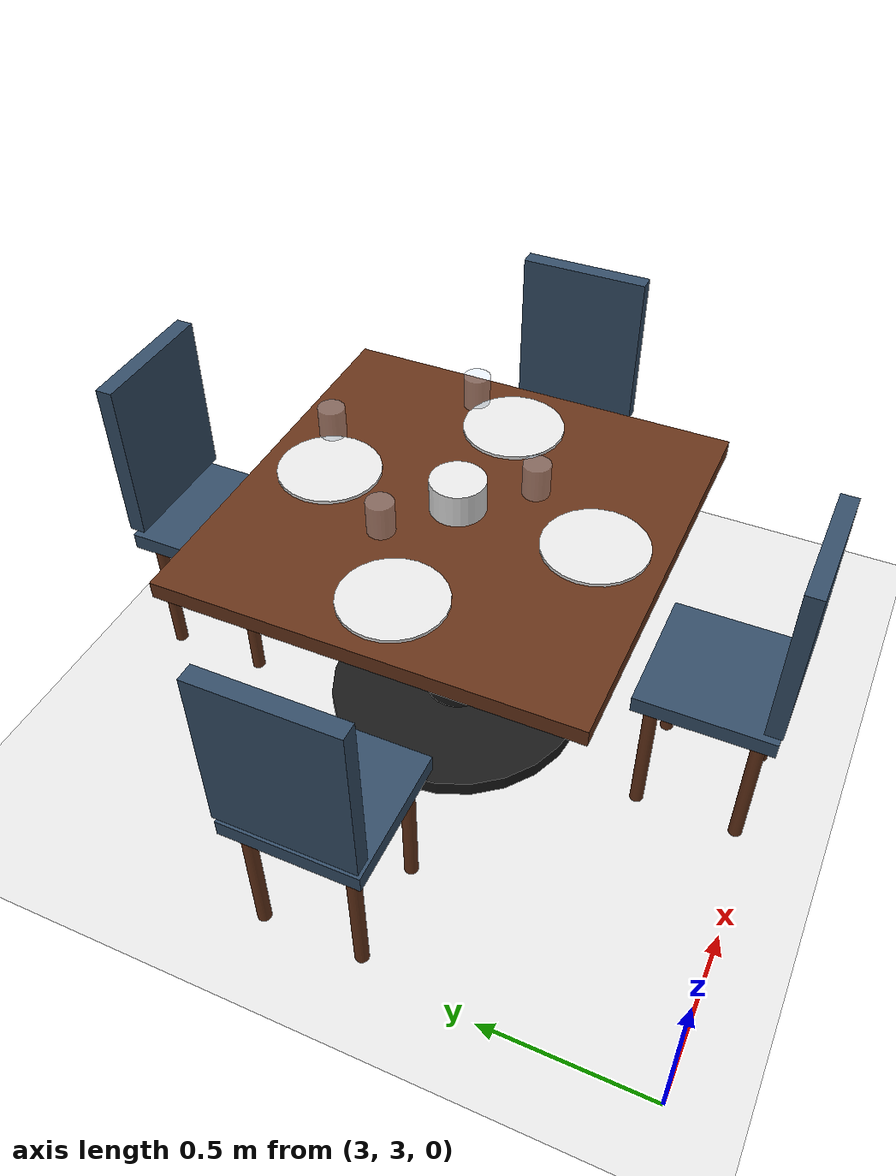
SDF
<sdf version="1.9">
 <world name="argo_restaurant">
  <model name="ground_plane">
   <static>true</static>
   <link name="link">
    <collision name="collision">
     <geometry><plane><normal>0 0 1</normal><size>100 100</size></plane></geometry>
    </collision>
    <visual name="visual">
     <geometry><plane><normal>0 0 1</normal><size>100 100</size></plane></geometry>
     <material>
      <ambient>0.9 0.9 0.9 1</ambient>
      <diffuse>0.9 0.9 0.9 1</diffuse>
      <specular>0.1 0.1 0.1 1</specular>
      <pbr><metal><roughness>0.1</roughness><metalness>0.0</metalness></metal></pbr>
     </material>
    </visual>
   </link>
  </model>
  <model name="table_8">
   <static>true</static>
   <link name="top_link">
    <pose>4.0 4.0 0.75 0 0 0</pose>
    <collision name="top_collision"><geometry><box><size>1.2 1.2 0.05</size></box></geometry></collision>
    <visual name="top_visual">
     <geometry><box><size>1.2 1.2 0.05</size></box></geometry>
     <material>
      <ambient>0.4 0.2 0.1 1</ambient>
      <diffuse>0.4 0.2 0.1 1</diffuse>
      <specular>0.1 0.1 0.1 1</specular>
      <pbr><metal><roughness>0.7</roughness><metalness>0.1</metalness></metal></pbr>
     </material>
    </visual>
   </link>
   <link name="leg_link">
    <pose>4.0 4.0 0.375 0 0 0</pose>
    <collision name="leg_collision">
     <geometry><cylinder><radius>0.1</radius><length>0.75</length></cylinder></geometry>
    </collision>
    <visual name="leg_visual">
     <geometry><cylinder><radius>0.1</radius><length>0.75</length></cylinder></geometry>
     <material>
      <ambient>0.1 0.1 0.1 1</ambient>
      <diffuse>0.1 0.1 0.1 1</diffuse>
      <specular>0.1 0.1 0.1 1</specular>
      <pbr><metal><roughness>0.5</roughness><metalness>0.0</metalness></metal></pbr>
     </material>
    </visual>
   </link>
   <link name="base_link">
    <pose>4.0 4.0 0.025 0 0 0</pose>
    <collision name="base_collision">
     <geometry><cylinder><radius>0.4</radius><length>0.05</length></cylinder></geometry>
    </collision>
    <visual name="base_visual">
     <geometry><cylinder><radius>0.4</radius><length>0.05</length></cylinder></geometry>
     <material>
      <ambient>0.1 0.1 0.1 1</ambient>
      <diffuse>0.1 0.1 0.1 1</diffuse>
      <specular>0.1 0.1 0.1 1</specular>
      <pbr><metal><roughness>0.5</roughness><metalness>0.0</metalness></metal></pbr>
     </material>
    </visual>
   </link>
   <link name="chair_0_seat_link">
    <pose>4.0 4.8 0.45 0 0 0</pose>
    <collision name="chair_0_seat_collision"><geometry><box><size>0.4 0.4 0.05</size></box></geometry></collision>
    <visual name="chair_0_seat_visual">
     <geometry><box><size>0.4 0.4 0.05</size></box></geometry>
     <material>
      <ambient>0.2 0.3 0.4 1</ambient>
      <diffuse>0.2 0.3 0.4 1</diffuse>
      <specular>0.1 0.1 0.1 1</specular>
      <pbr><metal><roughness>0.9</roughness><metalness>0.0</metalness></metal></pbr>
     </material>
    </visual>
   </link>
   <link name="chair_0_leg_-0.15_-0.15_link">
    <pose>3.85 4.6499999999999995 0.225 0 0 0</pose>
    <collision name="chair_0_leg_-0.15_-0.15_collision">
     <geometry><cylinder><radius>0.02</radius><length>0.45</length></cylinder></geometry>
    </collision>
    <visual name="chair_0_leg_-0.15_-0.15_visual">
     <geometry><cylinder><radius>0.02</radius><length>0.45</length></cylinder></geometry>
     <material>
      <ambient>0.4 0.2 0.1 1</ambient>
      <diffuse>0.4 0.2 0.1 1</diffuse>
      <specular>0.1 0.1 0.1 1</specular>
      <pbr><metal><roughness>0.7</roughness><metalness>0.1</metalness></metal></pbr>
     </material>
    </visual>
   </link>
   <link name="chair_0_leg_0.15_-0.15_link">
    <pose>4.15 4.6499999999999995 0.225 0 0 0</pose>
    <collision name="chair_0_leg_0.15_-0.15_collision">
     <geometry><cylinder><radius>0.02</radius><length>0.45</length></cylinder></geometry>
    </collision>
    <visual name="chair_0_leg_0.15_-0.15_visual">
     <geometry><cylinder><radius>0.02</radius><length>0.45</length></cylinder></geometry>
     <material>
      <ambient>0.4 0.2 0.1 1</ambient>
      <diffuse>0.4 0.2 0.1 1</diffuse>
      <specular>0.1 0.1 0.1 1</specular>
      <pbr><metal><roughness>0.7</roughness><metalness>0.1</metalness></metal></pbr>
     </material>
    </visual>
   </link>
   <link name="chair_0_leg_-0.15_0.15_link">
    <pose>3.85 4.95 0.225 0 0 0</pose>
    <collision name="chair_0_leg_-0.15_0.15_collision">
     <geometry><cylinder><radius>0.02</radius><length>0.45</length></cylinder></geometry>
    </collision>
    <visual name="chair_0_leg_-0.15_0.15_visual">
     <geometry><cylinder><radius>0.02</radius><length>0.45</length></cylinder></geometry>
     <material>
      <ambient>0.4 0.2 0.1 1</ambient>
      <diffuse>0.4 0.2 0.1 1</diffuse>
      <specular>0.1 0.1 0.1 1</specular>
      <pbr><metal><roughness>0.7</roughness><metalness>0.1</metalness></metal></pbr>
     </material>
    </visual>
   </link>
   <link name="chair_0_leg_0.15_0.15_link">
    <pose>4.15 4.95 0.225 0 0 0</pose>
    <collision name="chair_0_leg_0.15_0.15_collision">
     <geometry><cylinder><radius>0.02</radius><length>0.45</length></cylinder></geometry>
    </collision>
    <visual name="chair_0_leg_0.15_0.15_visual">
     <geometry><cylinder><radius>0.02</radius><length>0.45</length></cylinder></geometry>
     <material>
      <ambient>0.4 0.2 0.1 1</ambient>
      <diffuse>0.4 0.2 0.1 1</diffuse>
      <specular>0.1 0.1 0.1 1</specular>
      <pbr><metal><roughness>0.7</roughness><metalness>0.1</metalness></metal></pbr>
     </material>
    </visual>
   </link>
   <link name="chair_0_back_link">
    <pose>4.0 4.9799999999999995 0.75 0 0 0</pose>
    <collision name="chair_0_back_collision"><geometry><box><size>0.4 0.05 0.5</size></box></geometry></collision>
    <visual name="chair_0_back_visual">
     <geometry><box><size>0.4 0.05 0.5</size></box></geometry>
     <material>
      <ambient>0.2 0.3 0.4 1</ambient>
      <diffuse>0.2 0.3 0.4 1</diffuse>
      <specular>0.1 0.1 0.1 1</specular>
      <pbr><metal><roughness>0.9</roughness><metalness>0.0</metalness></metal></pbr>
     </material>
    </visual>
   </link>
   <link name="chair_1_seat_link">
    <pose>4.0 3.2 0.45 0 0 3.1415</pose>
    <collision name="chair_1_seat_collision"><geometry><box><size>0.4 0.4 0.05</size></box></geometry></collision>
    <visual name="chair_1_seat_visual">
     <geometry><box><size>0.4 0.4 0.05</size></box></geometry>
     <material>
      <ambient>0.2 0.3 0.4 1</ambient>
      <diffuse>0.2 0.3 0.4 1</diffuse>
      <specular>0.1 0.1 0.1 1</specular>
      <pbr><metal><roughness>0.9</roughness><metalness>0.0</metalness></metal></pbr>
     </material>
    </visual>
   </link>
   <link name="chair_1_leg_-0.15_-0.15_link">
    <pose>3.85 3.0500000000000003 0.225 0 0 0</pose>
    <collision name="chair_1_leg_-0.15_-0.15_collision">
     <geometry><cylinder><radius>0.02</radius><length>0.45</length></cylinder></geometry>
    </collision>
    <visual name="chair_1_leg_-0.15_-0.15_visual">
     <geometry><cylinder><radius>0.02</radius><length>0.45</length></cylinder></geometry>
     <material>
      <ambient>0.4 0.2 0.1 1</ambient>
      <diffuse>0.4 0.2 0.1 1</diffuse>
      <specular>0.1 0.1 0.1 1</specular>
      <pbr><metal><roughness>0.7</roughness><metalness>0.1</metalness></metal></pbr>
     </material>
    </visual>
   </link>
   <link name="chair_1_leg_0.15_-0.15_link">
    <pose>4.15 3.0500000000000003 0.225 0 0 0</pose>
    <collision name="chair_1_leg_0.15_-0.15_collision">
     <geometry><cylinder><radius>0.02</radius><length>0.45</length></cylinder></geometry>
    </collision>
    <visual name="chair_1_leg_0.15_-0.15_visual">
     <geometry><cylinder><radius>0.02</radius><length>0.45</length></cylinder></geometry>
     <material>
      <ambient>0.4 0.2 0.1 1</ambient>
      <diffuse>0.4 0.2 0.1 1</diffuse>
      <specular>0.1 0.1 0.1 1</specular>
      <pbr><metal><roughness>0.7</roughness><metalness>0.1</metalness></metal></pbr>
     </material>
    </visual>
   </link>
   <link name="chair_1_leg_-0.15_0.15_link">
    <pose>3.85 3.35 0.225 0 0 0</pose>
    <collision name="chair_1_leg_-0.15_0.15_collision">
     <geometry><cylinder><radius>0.02</radius><length>0.45</length></cylinder></geometry>
    </collision>
    <visual name="chair_1_leg_-0.15_0.15_visual">
     <geometry><cylinder><radius>0.02</radius><length>0.45</length></cylinder></geometry>
     <material>
      <ambient>0.4 0.2 0.1 1</ambient>
      <diffuse>0.4 0.2 0.1 1</diffuse>
      <specular>0.1 0.1 0.1 1</specular>
      <pbr><metal><roughness>0.7</roughness><metalness>0.1</metalness></metal></pbr>
     </material>
    </visual>
   </link>
   <link name="chair_1_leg_0.15_0.15_link">
    <pose>4.15 3.35 0.225 0 0 0</pose>
    <collision name="chair_1_leg_0.15_0.15_collision">
     <geometry><cylinder><radius>0.02</radius><length>0.45</length></cylinder></geometry>
    </collision>
    <visual name="chair_1_leg_0.15_0.15_visual">
     <geometry><cylinder><radius>0.02</radius><length>0.45</length></cylinder></geometry>
     <material>
      <ambient>0.4 0.2 0.1 1</ambient>
      <diffuse>0.4 0.2 0.1 1</diffuse>
      <specular>0.1 0.1 0.1 1</specular>
      <pbr><metal><roughness>0.7</roughness><metalness>0.1</metalness></metal></pbr>
     </material>
    </visual>
   </link>
   <link name="chair_1_back_link">
    <pose>3.9999833223538612 3.020000000772622 0.75 0 0 3.1415</pose>
    <collision name="chair_1_back_collision"><geometry><box><size>0.4 0.05 0.5</size></box></geometry></collision>
    <visual name="chair_1_back_visual">
     <geometry><box><size>0.4 0.05 0.5</size></box></geometry>
     <material>
      <ambient>0.2 0.3 0.4 1</ambient>
      <diffuse>0.2 0.3 0.4 1</diffuse>
      <specular>0.1 0.1 0.1 1</specular>
      <pbr><metal><roughness>0.9</roughness><metalness>0.0</metalness></metal></pbr>
     </material>
    </visual>
   </link>
   <link name="chair_2_seat_link">
    <pose>4.8 4.0 0.45 0 0 -1.5707</pose>
    <collision name="chair_2_seat_collision"><geometry><box><size>0.4 0.4 0.05</size></box></geometry></collision>
    <visual name="chair_2_seat_visual">
     <geometry><box><size>0.4 0.4 0.05</size></box></geometry>
     <material>
      <ambient>0.2 0.3 0.4 1</ambient>
      <diffuse>0.2 0.3 0.4 1</diffuse>
      <specular>0.1 0.1 0.1 1</specular>
      <pbr><metal><roughness>0.9</roughness><metalness>0.0</metalness></metal></pbr>
     </material>
    </visual>
   </link>
   <link name="chair_2_leg_-0.15_-0.15_link">
    <pose>4.6499999999999995 3.85 0.225 0 0 0</pose>
    <collision name="chair_2_leg_-0.15_-0.15_collision">
     <geometry><cylinder><radius>0.02</radius><length>0.45</length></cylinder></geometry>
    </collision>
    <visual name="chair_2_leg_-0.15_-0.15_visual">
     <geometry><cylinder><radius>0.02</radius><length>0.45</length></cylinder></geometry>
     <material>
      <ambient>0.4 0.2 0.1 1</ambient>
      <diffuse>0.4 0.2 0.1 1</diffuse>
      <specular>0.1 0.1 0.1 1</specular>
      <pbr><metal><roughness>0.7</roughness><metalness>0.1</metalness></metal></pbr>
     </material>
    </visual>
   </link>
   <link name="chair_2_leg_0.15_-0.15_link">
    <pose>4.95 3.85 0.225 0 0 0</pose>
    <collision name="chair_2_leg_0.15_-0.15_collision">
     <geometry><cylinder><radius>0.02</radius><length>0.45</length></cylinder></geometry>
    </collision>
    <visual name="chair_2_leg_0.15_-0.15_visual">
     <geometry><cylinder><radius>0.02</radius><length>0.45</length></cylinder></geometry>
     <material>
      <ambient>0.4 0.2 0.1 1</ambient>
      <diffuse>0.4 0.2 0.1 1</diffuse>
      <specular>0.1 0.1 0.1 1</specular>
      <pbr><metal><roughness>0.7</roughness><metalness>0.1</metalness></metal></pbr>
     </material>
    </visual>
   </link>
   <link name="chair_2_leg_-0.15_0.15_link">
    <pose>4.6499999999999995 4.15 0.225 0 0 0</pose>
    <collision name="chair_2_leg_-0.15_0.15_collision">
     <geometry><cylinder><radius>0.02</radius><length>0.45</length></cylinder></geometry>
    </collision>
    <visual name="chair_2_leg_-0.15_0.15_visual">
     <geometry><cylinder><radius>0.02</radius><length>0.45</length></cylinder></geometry>
     <material>
      <ambient>0.4 0.2 0.1 1</ambient>
      <diffuse>0.4 0.2 0.1 1</diffuse>
      <specular>0.1 0.1 0.1 1</specular>
      <pbr><metal><roughness>0.7</roughness><metalness>0.1</metalness></metal></pbr>
     </material>
    </visual>
   </link>
   <link name="chair_2_leg_0.15_0.15_link">
    <pose>4.95 4.15 0.225 0 0 0</pose>
    <collision name="chair_2_leg_0.15_0.15_collision">
     <geometry><cylinder><radius>0.02</radius><length>0.45</length></cylinder></geometry>
    </collision>
    <visual name="chair_2_leg_0.15_0.15_visual">
     <geometry><cylinder><radius>0.02</radius><length>0.45</length></cylinder></geometry>
     <material>
      <ambient>0.4 0.2 0.1 1</ambient>
      <diffuse>0.4 0.2 0.1 1</diffuse>
      <specular>0.1 0.1 0.1 1</specular>
      <pbr><metal><roughness>0.7</roughness><metalness>0.1</metalness></metal></pbr>
     </material>
    </visual>
   </link>
   <link name="chair_2_back_link">
    <pose>4.979999999164903 4.000017338823055 0.75 0 0 -1.5707</pose>
    <collision name="chair_2_back_collision"><geometry><box><size>0.4 0.05 0.5</size></box></geometry></collision>
    <visual name="chair_2_back_visual">
     <geometry><box><size>0.4 0.05 0.5</size></box></geometry>
     <material>
      <ambient>0.2 0.3 0.4 1</ambient>
      <diffuse>0.2 0.3 0.4 1</diffuse>
      <specular>0.1 0.1 0.1 1</specular>
      <pbr><metal><roughness>0.9</roughness><metalness>0.0</metalness></metal></pbr>
     </material>
    </visual>
   </link>
   <link name="chair_3_seat_link">
    <pose>3.2 4.0 0.45 0 0 1.5707</pose>
    <collision name="chair_3_seat_collision"><geometry><box><size>0.4 0.4 0.05</size></box></geometry></collision>
    <visual name="chair_3_seat_visual">
     <geometry><box><size>0.4 0.4 0.05</size></box></geometry>
     <material>
      <ambient>0.2 0.3 0.4 1</ambient>
      <diffuse>0.2 0.3 0.4 1</diffuse>
      <specular>0.1 0.1 0.1 1</specular>
      <pbr><metal><roughness>0.9</roughness><metalness>0.0</metalness></metal></pbr>
     </material>
    </visual>
   </link>
   <link name="chair_3_leg_-0.15_-0.15_link">
    <pose>3.0500000000000003 3.85 0.225 0 0 0</pose>
    <collision name="chair_3_leg_-0.15_-0.15_collision">
     <geometry><cylinder><radius>0.02</radius><length>0.45</length></cylinder></geometry>
    </collision>
    <visual name="chair_3_leg_-0.15_-0.15_visual">
     <geometry><cylinder><radius>0.02</radius><length>0.45</length></cylinder></geometry>
     <material>
      <ambient>0.4 0.2 0.1 1</ambient>
      <diffuse>0.4 0.2 0.1 1</diffuse>
      <specular>0.1 0.1 0.1 1</specular>
      <pbr><metal><roughness>0.7</roughness><metalness>0.1</metalness></metal></pbr>
     </material>
    </visual>
   </link>
   <link name="chair_3_leg_0.15_-0.15_link">
    <pose>3.35 3.85 0.225 0 0 0</pose>
    <collision name="chair_3_leg_0.15_-0.15_collision">
     <geometry><cylinder><radius>0.02</radius><length>0.45</length></cylinder></geometry>
    </collision>
    <visual name="chair_3_leg_0.15_-0.15_visual">
     <geometry><cylinder><radius>0.02</radius><length>0.45</length></cylinder></geometry>
     <material>
      <ambient>0.4 0.2 0.1 1</ambient>
      <diffuse>0.4 0.2 0.1 1</diffuse>
      <specular>0.1 0.1 0.1 1</specular>
      <pbr><metal><roughness>0.7</roughness><metalness>0.1</metalness></metal></pbr>
     </material>
    </visual>
   </link>
   <link name="chair_3_leg_-0.15_0.15_link">
    <pose>3.0500000000000003 4.15 0.225 0 0 0</pose>
    <collision name="chair_3_leg_-0.15_0.15_collision">
     <geometry><cylinder><radius>0.02</radius><length>0.45</length></cylinder></geometry>
    </collision>
    <visual name="chair_3_leg_-0.15_0.15_visual">
     <geometry><cylinder><radius>0.02</radius><length>0.45</length></cylinder></geometry>
     <material>
      <ambient>0.4 0.2 0.1 1</ambient>
      <diffuse>0.4 0.2 0.1 1</diffuse>
      <specular>0.1 0.1 0.1 1</specular>
      <pbr><metal><roughness>0.7</roughness><metalness>0.1</metalness></metal></pbr>
     </material>
    </visual>
   </link>
   <link name="chair_3_leg_0.15_0.15_link">
    <pose>3.35 4.15 0.225 0 0 0</pose>
    <collision name="chair_3_leg_0.15_0.15_collision">
     <geometry><cylinder><radius>0.02</radius><length>0.45</length></cylinder></geometry>
    </collision>
    <visual name="chair_3_leg_0.15_0.15_visual">
     <geometry><cylinder><radius>0.02</radius><length>0.45</length></cylinder></geometry>
     <material>
      <ambient>0.4 0.2 0.1 1</ambient>
      <diffuse>0.4 0.2 0.1 1</diffuse>
      <specular>0.1 0.1 0.1 1</specular>
      <pbr><metal><roughness>0.7</roughness><metalness>0.1</metalness></metal></pbr>
     </material>
    </visual>
   </link>
   <link name="chair_3_back_link">
    <pose>3.020000000835097 4.000017338823055 0.75 0 0 1.5707</pose>
    <collision name="chair_3_back_collision"><geometry><box><size>0.4 0.05 0.5</size></box></geometry></collision>
    <visual name="chair_3_back_visual">
     <geometry><box><size>0.4 0.05 0.5</size></box></geometry>
     <material>
      <ambient>0.2 0.3 0.4 1</ambient>
      <diffuse>0.2 0.3 0.4 1</diffuse>
      <specular>0.1 0.1 0.1 1</specular>
      <pbr><metal><roughness>0.9</roughness><metalness>0.0</metalness></metal></pbr>
     </material>
    </visual>
   </link>
   <link name="centerpiece_pot_link">
    <pose>4.0 4.0 0.825 0 0 0</pose>
    <collision name="centerpiece_pot_collision">
     <geometry><cylinder><radius>0.08</radius><length>0.1</length></cylinder></geometry>
    </collision>
    <visual name="centerpiece_pot_visual">
     <geometry><cylinder><radius>0.08</radius><length>0.1</length></cylinder></geometry>
     <material>
      <ambient>0.9 0.9 0.9 1</ambient>
      <diffuse>0.9 0.9 0.9 1</diffuse>
      <specular>0.1 0.1 0.1 1</specular>
      <pbr><metal><roughness>0.2</roughness><metalness>0.0</metalness></metal></pbr>
     </material>
    </visual>
   </link>
   <link name="plate_0_link">
    <pose>4.0 4.4 0.78 0 0 0</pose>
    <collision name="plate_0_collision">
     <geometry><cylinder><radius>0.15</radius><length>0.01</length></cylinder></geometry>
    </collision>
    <visual name="plate_0_visual">
     <geometry><cylinder><radius>0.15</radius><length>0.01</length></cylinder></geometry>
     <material>
      <ambient>0.9 0.9 0.9 1</ambient>
      <diffuse>0.9 0.9 0.9 1</diffuse>
      <specular>0.1 0.1 0.1 1</specular>
      <pbr><metal><roughness>0.2</roughness><metalness>0.0</metalness></metal></pbr>
     </material>
    </visual>
   </link>
   <link name="glass_0_link">
    <pose>4.15 4.47 0.825 0 0 0</pose>
    <collision name="glass_0_collision">
     <geometry><cylinder><radius>0.04</radius><length>0.1</length></cylinder></geometry>
    </collision>
    <visual name="glass_0_visual">
     <geometry><cylinder><radius>0.04</radius><length>0.1</length></cylinder></geometry>
     <material>
      <ambient>0.8 0.9 1.0 0.3</ambient>
      <diffuse>0.8 0.9 1.0 0.3</diffuse>
      <specular>0.9 0.9 0.9 1</specular>
      <pbr><metal><roughness>0.0</roughness><metalness>0.9</metalness></metal></pbr>
     </material>
    </visual>
   </link>
   <link name="plate_1_link">
    <pose>4.0 3.6 0.78 0 0 0</pose>
    <collision name="plate_1_collision">
     <geometry><cylinder><radius>0.15</radius><length>0.01</length></cylinder></geometry>
    </collision>
    <visual name="plate_1_visual">
     <geometry><cylinder><radius>0.15</radius><length>0.01</length></cylinder></geometry>
     <material>
      <ambient>0.9 0.9 0.9 1</ambient>
      <diffuse>0.9 0.9 0.9 1</diffuse>
      <specular>0.1 0.1 0.1 1</specular>
      <pbr><metal><roughness>0.2</roughness><metalness>0.0</metalness></metal></pbr>
     </material>
    </visual>
   </link>
   <link name="glass_1_link">
    <pose>4.15 3.83 0.825 0 0 0</pose>
    <collision name="glass_1_collision">
     <geometry><cylinder><radius>0.04</radius><length>0.1</length></cylinder></geometry>
    </collision>
    <visual name="glass_1_visual">
     <geometry><cylinder><radius>0.04</radius><length>0.1</length></cylinder></geometry>
     <material>
      <ambient>0.8 0.9 1.0 0.3</ambient>
      <diffuse>0.8 0.9 1.0 0.3</diffuse>
      <specular>0.9 0.9 0.9 1</specular>
      <pbr><metal><roughness>0.0</roughness><metalness>0.9</metalness></metal></pbr>
     </material>
    </visual>
   </link>
   <link name="plate_2_link">
    <pose>4.4 4.0 0.78 0 0 0</pose>
    <collision name="plate_2_collision">
     <geometry><cylinder><radius>0.15</radius><length>0.01</length></cylinder></geometry>
    </collision>
    <visual name="plate_2_visual">
     <geometry><cylinder><radius>0.15</radius><length>0.01</length></cylinder></geometry>
     <material>
      <ambient>0.9 0.9 0.9 1</ambient>
      <diffuse>0.9 0.9 0.9 1</diffuse>
      <specular>0.1 0.1 0.1 1</specular>
      <pbr><metal><roughness>0.2</roughness><metalness>0.0</metalness></metal></pbr>
     </material>
    </visual>
   </link>
   <link name="glass_2_link">
    <pose>4.47 4.15 0.825 0 0 0</pose>
    <collision name="glass_2_collision">
     <geometry><cylinder><radius>0.04</radius><length>0.1</length></cylinder></geometry>
    </collision>
    <visual name="glass_2_visual">
     <geometry><cylinder><radius>0.04</radius><length>0.1</length></cylinder></geometry>
     <material>
      <ambient>0.8 0.9 1.0 0.3</ambient>
      <diffuse>0.8 0.9 1.0 0.3</diffuse>
      <specular>0.9 0.9 0.9 1</specular>
      <pbr><metal><roughness>0.0</roughness><metalness>0.9</metalness></metal></pbr>
     </material>
    </visual>
   </link>
   <link name="plate_3_link">
    <pose>3.6 4.0 0.78 0 0 0</pose>
    <collision name="plate_3_collision">
     <geometry><cylinder><radius>0.15</radius><length>0.01</length></cylinder></geometry>
    </collision>
    <visual name="plate_3_visual">
     <geometry><cylinder><radius>0.15</radius><length>0.01</length></cylinder></geometry>
     <material>
      <ambient>0.9 0.9 0.9 1</ambient>
      <diffuse>0.9 0.9 0.9 1</diffuse>
      <specular>0.1 0.1 0.1 1</specular>
      <pbr><metal><roughness>0.2</roughness><metalness>0.0</metalness></metal></pbr>
     </material>
    </visual>
   </link>
   <link name="glass_3_link">
    <pose>3.83 4.15 0.825 0 0 0</pose>
    <collision name="glass_3_collision">
     <geometry><cylinder><radius>0.04</radius><length>0.1</length></cylinder></geometry>
    </collision>
    <visual name="glass_3_visual">
     <geometry><cylinder><radius>0.04</radius><length>0.1</length></cylinder></geometry>
     <material>
      <ambient>0.8 0.9 1.0 0.3</ambient>
      <diffuse>0.8 0.9 1.0 0.3</diffuse>
      <specular>0.9 0.9 0.9 1</specular>
      <pbr><metal><roughness>0.0</roughness><metalness>0.9</metalness></metal></pbr>
     </material>
    </visual>
   </link>
  </model>
 </world>
</sdf>
